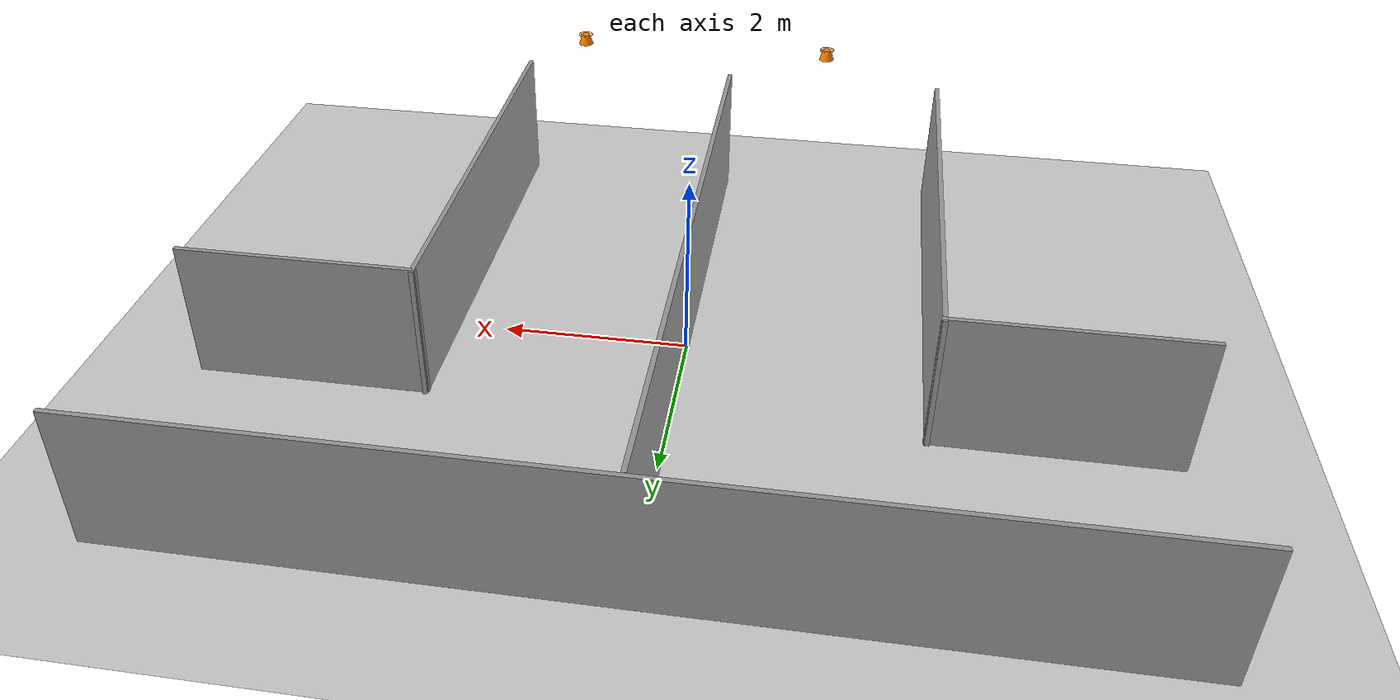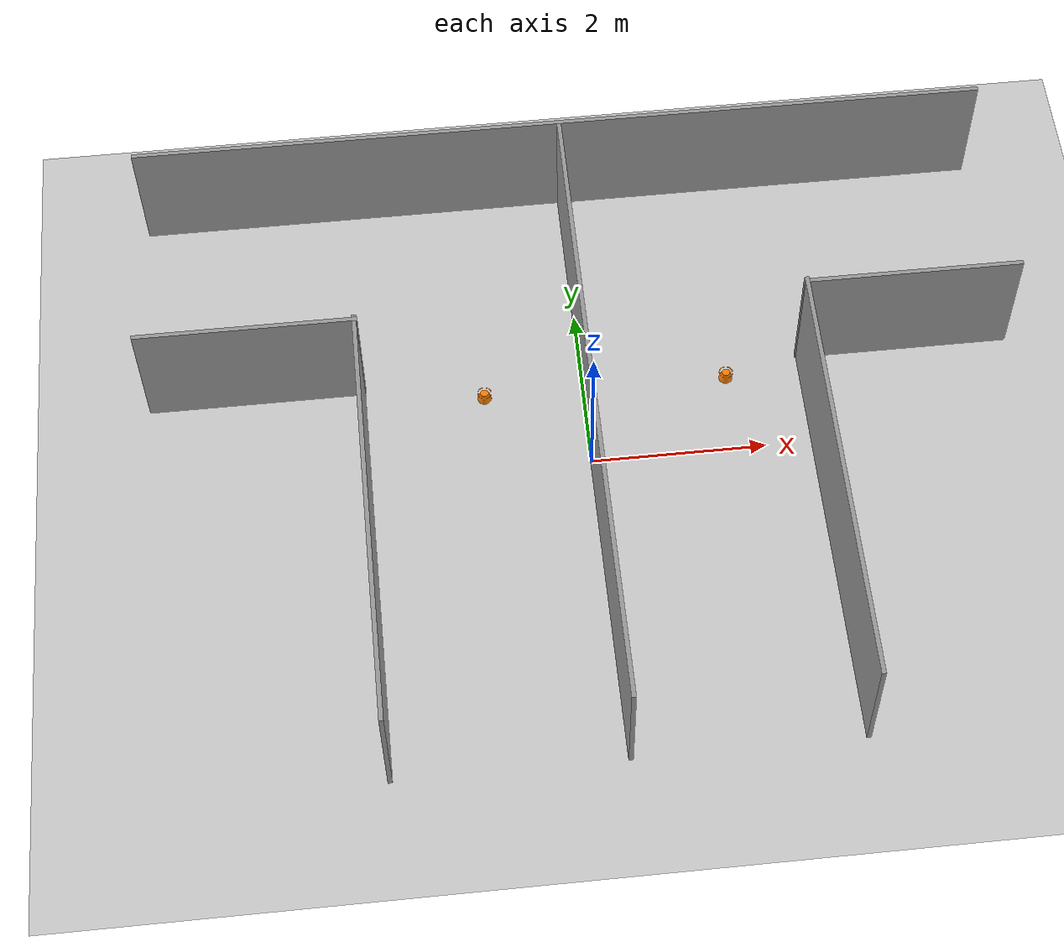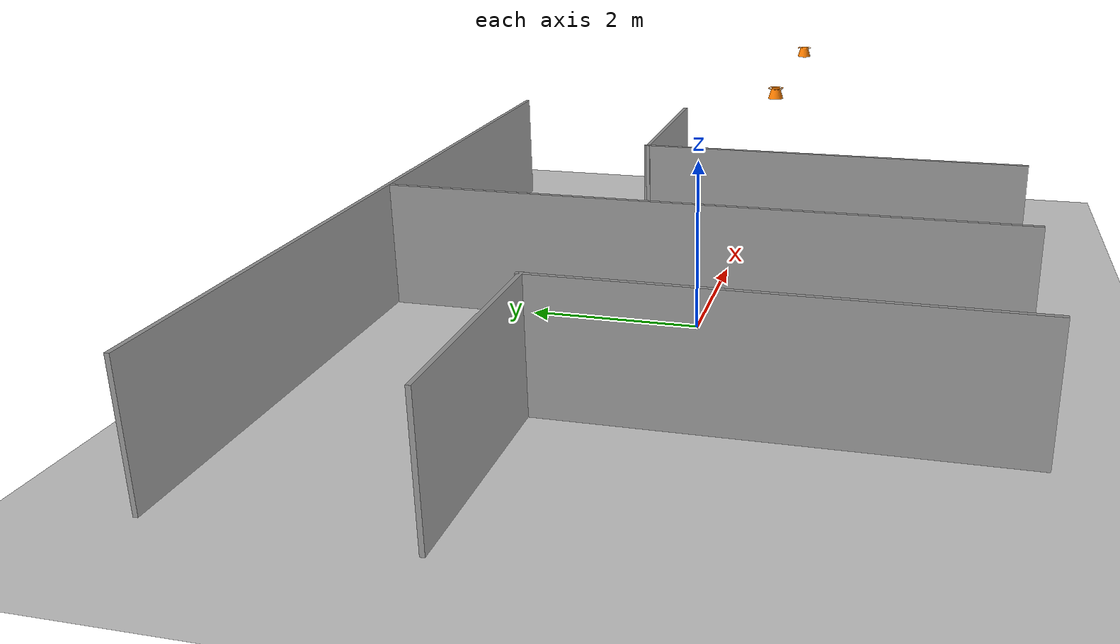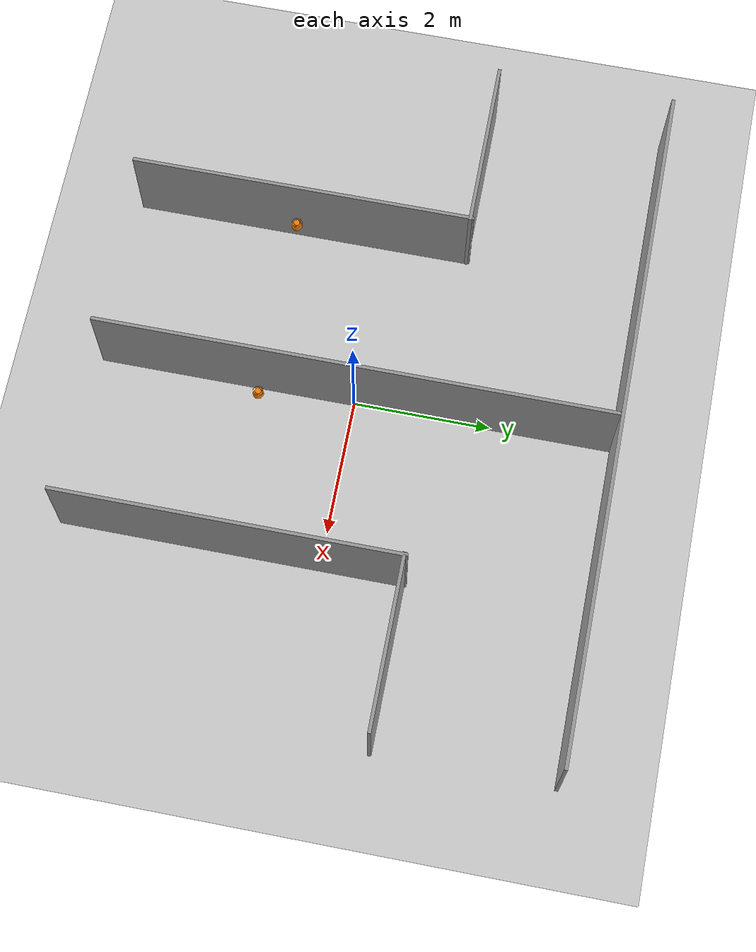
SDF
<sdf version="1.7">
 <world name="default">
  <plugin name="ros_link_attacher_plugin" filename="libgazebo_ros_link_attacher.so"/>
  <physics type="ode">
   <ode>
    <solver><type>quick</type><iters>100</iters><sor>1.0</sor></solver>
    <constraints>
     <cfm>0.0</cfm>
     <erp>0.9</erp>
     <contact_max_correcting_vel>0.1</contact_max_correcting_vel>
     <contact_surface_layer>0.0</contact_surface_layer>
    </constraints>
   </ode>
   <real_time_update_rate>1000</real_time_update_rate>
   <max_step_size>0.0010</max_step_size>
  </physics>
  <scene>
   <sky><clouds><speed>10</speed></clouds></sky>
   <ambient>0.4 0.4 0.4 1</ambient>
   <background>0.25 0.25 0.25 1</background>
  </scene>
  <model name="ground_plane">
   <static>true</static>
   <link name="link">
    <collision name="collision">
     <geometry><plane><normal>0 0 1</normal><size>1000 1000</size></plane></geometry>
     <surface><friction><ode><mu>1</mu><mu2>1</mu2></ode></friction></surface>
    </collision>
    <visual name="visual">
     <pose>0 80 0.005 0 -0 1.5708</pose>
     <geometry><plane><size>1829 45</size></plane></geometry>
     <material>
      <script><uri>file://media/materials/scripts/gazebo.material</uri><name>Gazebo/Runway</name></script>
     </material>
    </visual>
    <visual name="visual2">
     <pose>0 0 0 -0.8 0</pose>
     <cast_shadows>false</cast_shadows>
     <geometry><plane><size>500 500</size></plane></geometry>
     <material>
      <script><uri>file://media/materials/scripts/gazebo.material</uri><name>Gazebo/Grass</name></script>
     </material>
    </visual>
    <visual name="AUTONOMOUS START INDOOR KIRI">
     <pose>-1.3 -3.15 0.02 -0 0</pose>
     <geometry><box><size>1.2 1.2 0</size></box></geometry>
     <material>
      <lighting>1</lighting>
      <ambient>255 255 255</ambient>
      <script><uri>file://media/materials/scripts/gazebo.material</uri><name>Gazebo/Grey</name></script>
     </material>
    </visual>
    <visual name="AUTONOMOUS START INDOOR KANAN">
     <pose>1.3 -3.15 0.02 -0 0</pose>
     <geometry><box><size>1.2 1.2 0</size></box></geometry>
     <material>
      <lighting>1</lighting>
      <ambient>255 255 255</ambient>
      <script><uri>file://media/materials/scripts/gazebo.material</uri><name>Gazebo/Grey</name></script>
     </material>
    </visual>
    <visual name="AUTONOMOUS START OUTDOOR KIRI">
     <pose>-4.4 -3.15 0.02 -0 0</pose>
     <geometry><box><size>1.2 1.2 0</size></box></geometry>
     <material>
      <lighting>1</lighting>
      <ambient>255 255 255</ambient>
      <script><uri>file://media/materials/scripts/gazebo.material</uri><name>Gazebo/Grey</name></script>
     </material>
    </visual>
    <visual name="AUTONOMOUS START OUTDOOR KANAN">
     <pose>4.4 -3.15 0.02 -0 0</pose>
     <geometry><box><size>1.2 1.2 0</size></box></geometry>
     <material>
      <lighting>1</lighting>
      <ambient>255 255 255</ambient>
      <script><uri>file://media/materials/scripts/gazebo.material</uri><name>Gazebo/Grey</name></script>
     </material>
    </visual>
    <visual name="terpal TL">
     <pose>-49 95.25 0.003 -0 0</pose>
     <geometry><box><size>2 2 0</size></box></geometry>
     <material>
      <lighting>1</lighting>
      <script><uri>file://media/materials/scripts/gazebo.material</uri><name>Gazebo/Orange</name></script>
     </material>
    </visual>
    <visual name="terpal TR">
     <pose>49 95.25 0.003 -0 0</pose>
     <geometry><box><size>2 2 0</size></box></geometry>
     <material>
      <lighting>1</lighting>
      <script><uri>file://media/materials/scripts/gazebo.material</uri><name>Gazebo/Orange</name></script>
     </material>
    </visual>
    <visual name="terpal TengahL">
     <pose>0 45 0.003 -0 0</pose>
     <geometry><box><size>2 2 0</size></box></geometry>
     <material>
      <lighting>1</lighting>
      <script><uri>file://media/materials/scripts/gazebo.material</uri><name>Gazebo/Orange</name></script>
     </material>
    </visual>
    <visual name="terpal BL">
     <pose>-49 -2.75 0.003 -0 0</pose>
     <geometry><box><size>2 2 0</size></box></geometry>
     <material>
      <lighting>1</lighting>
      <script><uri>file://media/materials/scripts/gazebo.material</uri><name>Gazebo/Orange</name></script>
     </material>
    </visual>
    <visual name="terpal BR">
     <pose>49 -2.75 0.003 -0 0</pose>
     <geometry><box><size>2 2 0</size></box></geometry>
     <material>
      <lighting>1</lighting>
      <script><uri>file://media/materials/scripts/gazebo.material</uri><name>Gazebo/Orange</name></script>
     </material>
    </visual>
   </link>
  </model>
  <include><name>sun</name><uri>model://sun</uri></include>
  <model name="object kiri"><include><uri>model://object</uri></include><pose>-1.23 -1 3 0 0 0</pose></model>
  <model name="object kanan"><include><uri>model://object</uri></include><pose>1.23 -1 3 0 0 0</pose></model>
  <model name="wall"><include><uri>model://wall_krti2023</uri></include></model>
 </world>
</sdf>

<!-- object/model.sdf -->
<sdf version="1.5">
  <model name="object">
    <pose>0 0 0  0 0 0</pose>
    <link name="link">
      <inertial>
        <mass>0.00001</mass>
        <inertia>
          <ixx>0.001</ixx>
          <ixy>0</ixy>
          <ixz>0</ixz>
          <iyy>0.001</iyy>
          <iyz>0</iyz>
          <izz>0.001</izz>
        </inertia>
      </inertial>

      <collision name="collision">
        <geometry>
          <mesh>
            <uri>model://object/meshes/objek-vtol-2023.dae</uri>
          </mesh>
        </geometry>
      </collision>
      <visual name="visual">
        <geometry>
          <mesh>
            <uri>model://object/meshes/objek-vtol-2023.dae</uri>
          </mesh>
	      </geometry>
      </visual>
    </link>
  </model>
</sdf>

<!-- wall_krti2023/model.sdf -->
<sdf version='1.7'>
  <model name='wall_krti2023'>
    <pose>0 0 0 0 -0 0</pose>
    <link name='Wall_0'>
      <collision name='Wall_0_Collision'>
        <geometry>
          <box>
            <size>7.5 0.05 1.5</size>
          </box>
        </geometry>
        <pose>0 0 0.75 0 -0 0</pose>
      </collision>
      <visual name='Wall_0_Visual'>
        <pose>0 0 0.75 0 -0 0</pose>
        <geometry>
          <box>
            <size>7.5 0.05 1.5</size>
          </box>
        </geometry>
        <material>
          <script>
            <uri>file://media/materials/scripts/gazebo.material</uri>
            <name>Gazebo/Grey</name>
          </script>
          <ambient>1 1 1 1</ambient>
        </material>
        <meta>
          <layer>0</layer>
        </meta>
      </visual>
      <pose>-0 0 0 0 -0 -1.5708</pose>
    </link>
    <link name='Wall_10'>
      <collision name='Wall_10_Collision'>
        <geometry>
          <box>
            <size>2.5 0.05 1.5</size>
          </box>
        </geometry>
        <pose>0 0 0.75 0 -0 0</pose>
      </collision>
      <visual name='Wall_10_Visual'>
        <pose>0 0 0.75 0 -0 0</pose>
        <geometry>
          <box>
            <size>2.5 0.05 1.5</size>
          </box>
        </geometry>
        <material>
          <script>
            <uri>file://media/materials/scripts/gazebo.material</uri>
            <name>Gazebo/Grey</name>
          </script>
          <ambient>1 1 1 1</ambient>
        </material>
        <meta>
          <layer>0</layer>
        </meta>
      </visual>
      <pose>-3.765 1.2 0 0 -0 3.14159</pose>
    </link>
    <link name='Wall_13'>
      <collision name='Wall_13_Collision'>
        <geometry>
          <box>
            <size>5 0.05 1.5</size>
          </box>
        </geometry>
        <pose>0 0 0.75 0 -0 0</pose>
      </collision>
      <visual name='Wall_13_Visual'>
        <pose>0 0 0.75 0 -0 0</pose>
        <geometry>
          <box>
            <size>5 0.05 1.5</size>
          </box>
        </geometry>
        <material>
          <script>
            <uri>file://media/materials/scripts/gazebo.material</uri>
            <name>Gazebo/Grey</name>
          </script>
          <ambient>1 1 1 1</ambient>
        </material>
        <meta>
          <layer>0</layer>
        </meta>
      </visual>
      <pose>2.55 -1.25 0 0 -0 1.5708</pose>
    </link>
    <link name='Wall_14'>
      <collision name='Wall_14_Collision'>
        <geometry>
          <box>
            <size>2.5 0.05 1.5</size>
          </box>
        </geometry>
        <pose>0 0 0.75 0 -0 0</pose>
      </collision>
      <visual name='Wall_14_Visual'>
        <pose>0 0 0.75 0 -0 0</pose>
        <geometry>
          <box>
            <size>2.5 0.05 1.5</size>
          </box>
        </geometry>
        <material>
          <script>
            <uri>file://media/materials/scripts/gazebo.material</uri>
            <name>Gazebo/Grey</name>
          </script>
          <ambient>1 1 1 1</ambient>
        </material>
        <meta>
          <layer>0</layer>
        </meta>
      </visual>
      <pose>3.765 1.2 0 0 -0 0</pose>
    </link>
    <link name='Wall_3'>
      <collision name='Wall_3_Collision'>
        <geometry>
          <box>
            <size>10 0.05 1.5</size>
          </box>
        </geometry>
        <pose>0 0 0.75 0 -0 0</pose>
      </collision>
      <visual name='Wall_3_Visual'>
        <pose>0 0 0.75 0 -0 0</pose>
        <geometry>
          <box>
            <size>10 0.05 1.5</size>
          </box>
        </geometry>
        <material>
          <script>
            <uri>file://media/materials/scripts/gazebo.material</uri>
            <name>Gazebo/Grey</name>
          </script>
          <ambient>1 1 1 1</ambient>
        </material>
        <meta>
          <layer>0</layer>
        </meta>
      </visual>
      <pose>0 3.78 0 0 -0 0</pose>
    </link>
    <link name='Wall_9'>
      <collision name='Wall_9_Collision'>
        <geometry>
          <box>
            <size>5 0.05 1.5</size>
          </box>
        </geometry>
        <pose>0 0 0.75 0 -0 0</pose>
      </collision>
      <visual name='Wall_9_Visual'>
        <pose>0 0 0.75 0 -0 0</pose>
        <geometry>
          <box>
            <size>5 0.05 1.5</size>
          </box>
        </geometry>
        <material>
          <script>
            <uri>file://media/materials/scripts/gazebo.material</uri>
            <name>Gazebo/Grey</name>
          </script>
          <ambient>1 1 1 1</ambient>
        </material>
        <meta>
          <layer>0</layer>
        </meta>
      </visual>
      <pose>-2.55 -1.25 0 0 -0 1.5708</pose>
    </link>
    <static>1</static>
  </model>
</sdf>
